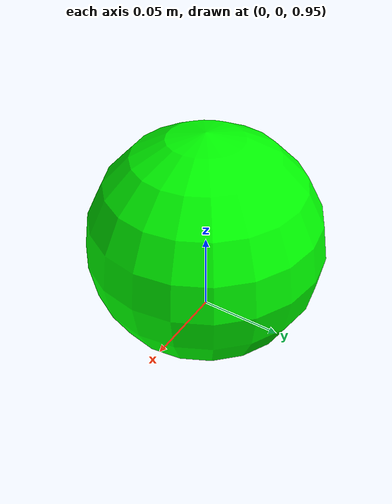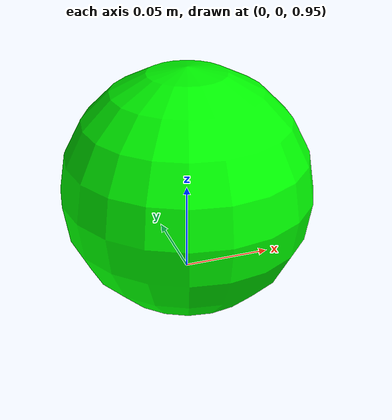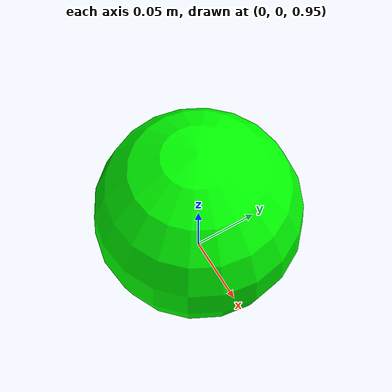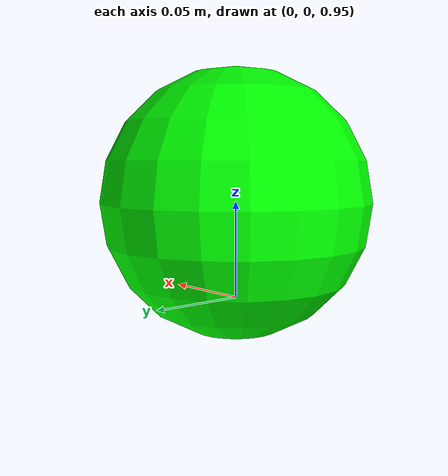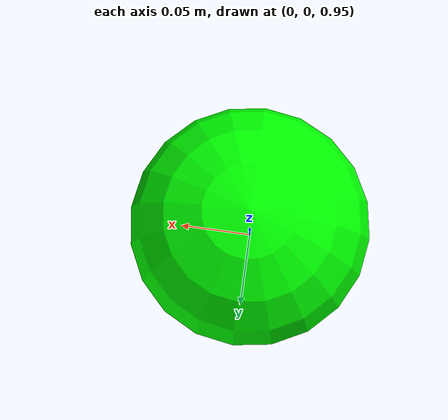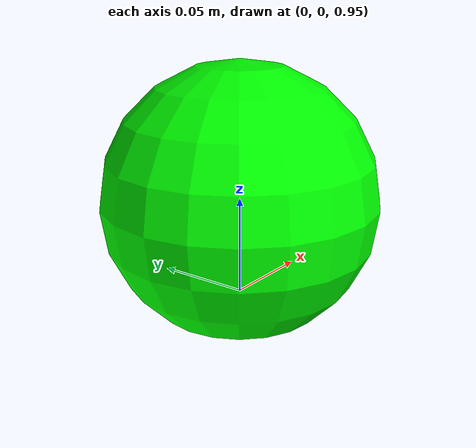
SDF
<?xml version='1.0'?>
<sdf version='1.4'>
  <model name='ball'>
    <pose>0 0 1 0 0 0</pose>
    <static>false</static>
    <link name='ball_link'>
      <collision name='ball_collision'>
        <geometry>
          <sphere>
            <radius>0.07</radius>
          </sphere>
        </geometry>
        <surface>
          <friction>
            <ode>
              <mu>1.0</mu>
              <mu2>1.0</mu2>
            </ode>
          </friction>
          <contact>
            <ode>
              <soft_red_limit>0.001</soft_red_limit>
              <soft_erp>0.7</soft_erp>
            </ode>
          </contact>
        </surface>
      </collision>
      <visual name='ball_visual'>
        <geometry>
          <sphere>
            <radius>0.07</radius>
          </sphere>
        </geometry>
        <material>
          <ambient>0 1 0 1</ambient>
          <diffuse>0 1 0 1</diffuse>
          <specular>0 0 0 1</specular>
          <emissive>0 0 0 1</emissive>
        </material>
      </visual>
      <inertial>
        <mass>0.45</mass>
        <inertia>
          <ixx>0.00025</ixx>
          <ixy>0.0</ixy>
          <ixz>0.0</ixz>
          <iyy>0.00025</iyy>
          <iyz>0.0</iyz>
          <izz>0.00025</izz>
        </inertia>
        <stiffness>10000.0</stiffness>
        <damping_ratio>0.7</damping_ratio>
      </inertial>
      <physics name="default" type="ode">
        <max_step_size>0.01</max_step_size>
        <real_time_factor>1.0</real_time_factor>
        <real_time_update_rate>100.0</real_time_update_rate>
        <gravity>0 -9.81 0</gravity>
      </physics>
    </link>
  </model>
</sdf>
